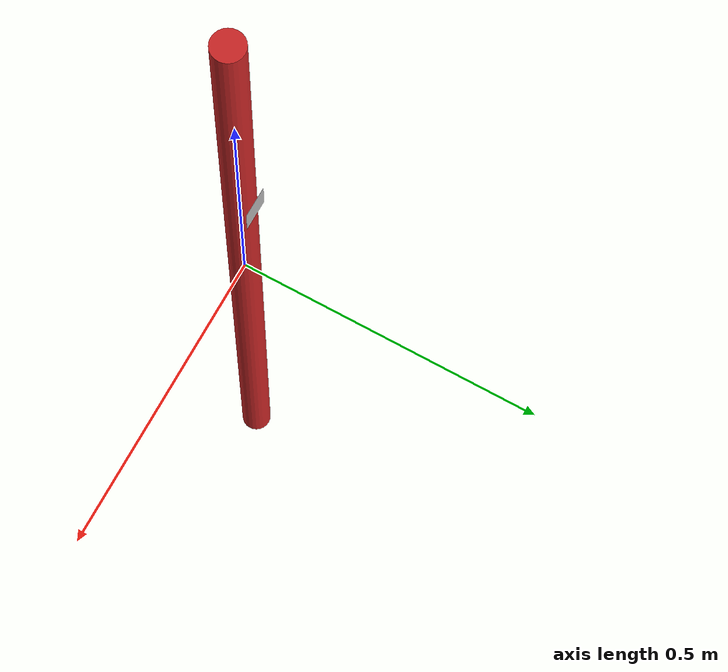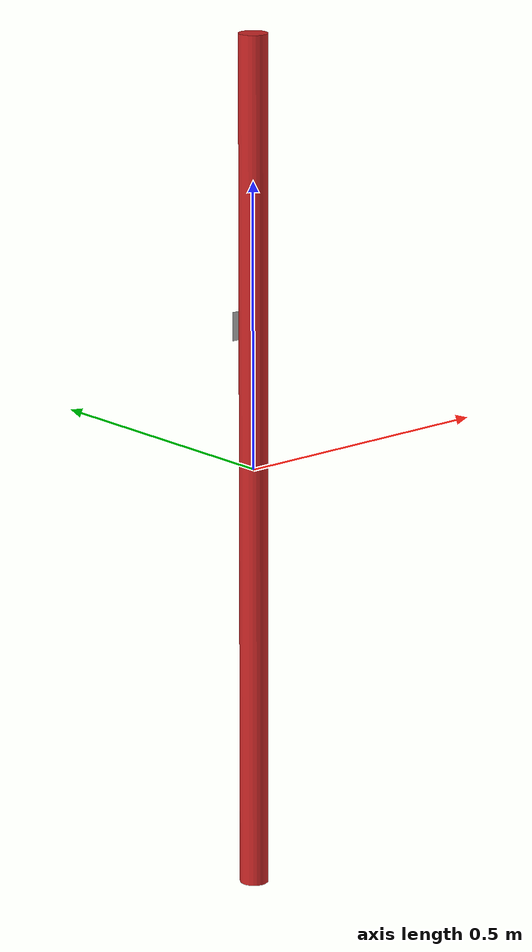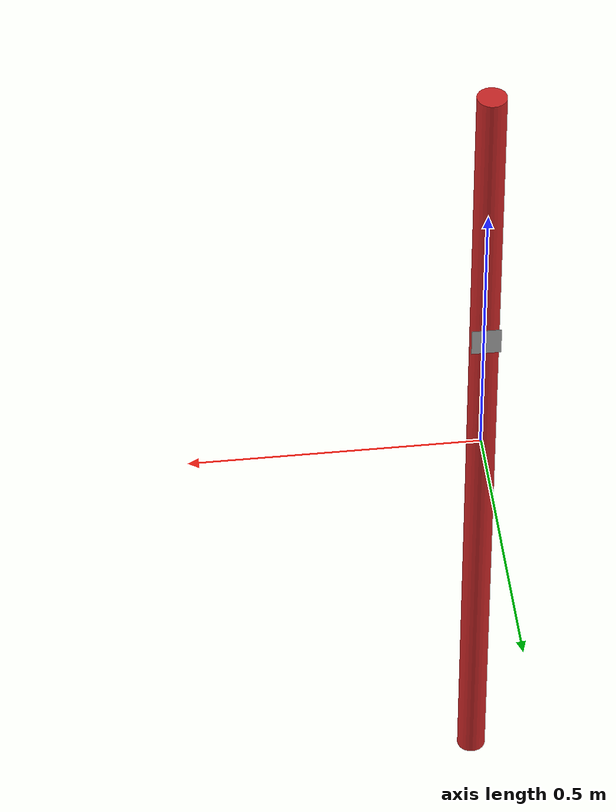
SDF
<?xml version="1.0"?>
<sdf version="1.5">
  <model name="pole">
    <static>true</static>
    <link name="link">
      <!-- Main pole body -->
      <visual name="pole_visual">
        <geometry>
          <cylinder>
            <radius>0.025</radius>
            <length>1.5</length>
          </cylinder>
        </geometry>
        <material>
          <script>
            <uri>file://media/materials/scripts/gazebo.material</uri>
            <name>Gazebo/Red</name>
          </script>
        </material>
      </visual>
      <!-- Marker at 1m height -->
      <visual name="marker_visual">
        <pose>0 0.025 0.25 0 0 0</pose>
        <geometry>
          <box>
            <size>0.05 0.0001 0.05</size>
          </box>
        </geometry>
        <material>
          <script>
            <uri>model://pole/materials/scripts/pole_marker.material</uri>
            <name>PoleMarker</name>
          </script>
        </material>
      </visual>
      <collision name="collision">
        <geometry>
          <cylinder>
            <radius>0.025</radius>
            <length>2</length>
          </cylinder>
        </geometry>
      </collision>
    </link>
  </model>
</sdf>
